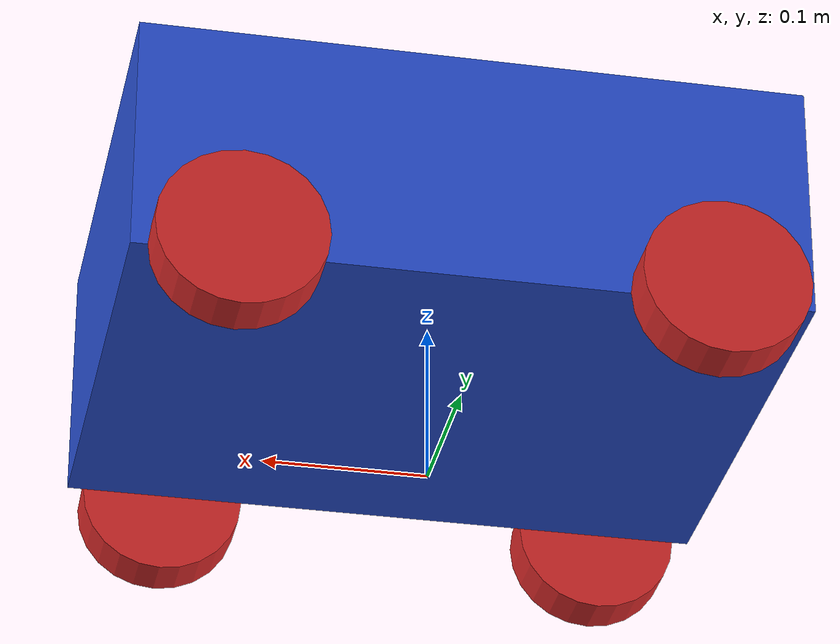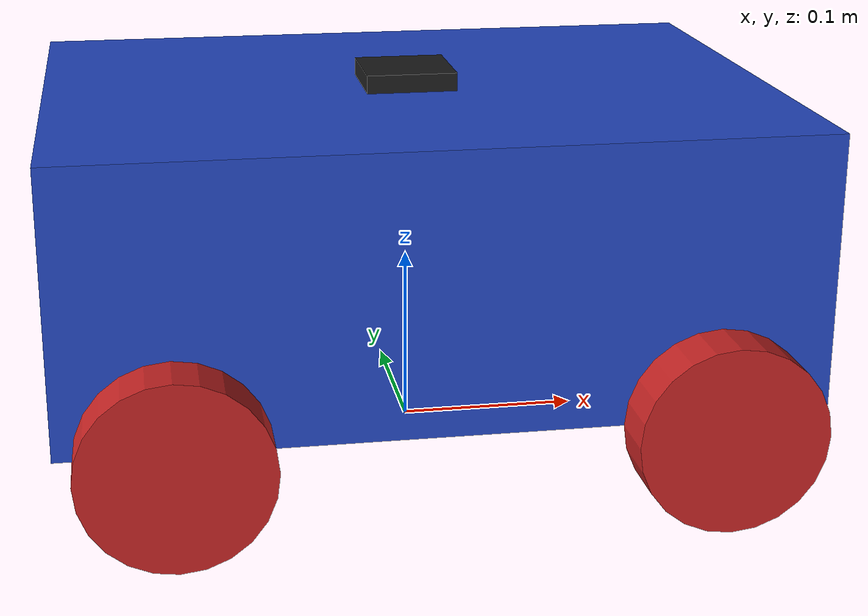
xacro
<?xml version="1.0"?>
<robot name="mecanum_robot" xmlns:xacro="http://www.ros.org/wiki/xacro">

    <!-- Xacro parameters -->
    <xacro:property name="base_length" value="0.4"/>
    <xacro:property name="base_height" value="0.15"/>
    <xacro:property name="base_width" value="0.3"/>
    <xacro:property name="wheel_radius" value="0.05"/>
    <xacro:property name="wheel_length" value="0.03"/>
    <xacro:property name="rotate_90" value="1.57"/>
    <xacro:property name="l_b" value ="0.14"/>
    <xacro:property name="imu_length" value = "0.05"/>
    <xacro:property name="imu_height" value= "0.01"/>
    <xacro:property name="imu_width" value= "0.05"/>

    <!-- Wheel macro -->
    <xacro:macro name="wheel_link" params="prefix">
        <link name="${prefix}_wheel_link">
            <visual>
                <geometry>
                    <cylinder radius="${wheel_radius}" length="${wheel_length}"/>
                </geometry>
                <!-- Rotate cylinder to roll correctly along Y axis -->
                <origin xyz="0.0 0.0 0.0" rpy="${rotate_90} 0.0 0.0"/>
                <material name="red"/>
            </visual>
            <collision>
                <geometry>
                    <sphere radius="${wheel_radius}"/>
                </geometry>
                <origin xyz="0.0 0.0 0.0" rpy="0.0 0.0 0.0"/>
            </collision>
            <xacro:cylinder_inertia
                m="1.0"
                r="${wheel_radius}"
                l="${wheel_length}"
                o_xyz="0.0 0.0 0.0"
                o_rpy="0.0 ${rotate_90} 0.0"/>
        </link>
    </xacro:macro>

    <!-- Instantiate wheels -->
    <xacro:wheel_link prefix="front_right"/>
    <xacro:wheel_link prefix="front_left"/>
    <xacro:wheel_link prefix="back_right"/>
    <xacro:wheel_link prefix="back_left"/>

    <!-- Base links -->
    <link name="base_footprint"/>

    <link name="base_link">
        <visual>
            <geometry>
                <box size="${base_length} ${base_width} ${base_height}"/>
            </geometry>
            <origin xyz="0.0 0.0 ${base_height / 2.0}" rpy="0.0 0.0 0.0"/>
            <material name="blue"/>
        </visual>
        <collision>
            <geometry>
                <box size="${base_length} ${base_width} ${base_height}"/>
            </geometry>
            <origin xyz="0.0 0.0 ${base_height / 2.0}" rpy="0.0 0.0 0.0"/>
        </collision>
        <xacro:box_inertia
            m="5.0"
            x="${base_length}"
            y="${base_width}"
            z="${base_height}"
            o_xyz="0.0 0.0 ${base_height / 2.0}"
            o_rpy="0.0 0.0 0.0"/>
    </link>

    <!-- IMU links -->
    <link name="imu_link">
        <visual>
            <geometry>
                <box size="${imu_length} ${imu_width} ${imu_height}"/>
            </geometry>
            <origin xyz="0.0 0.0 ${imu_height/2}" rpy="0.0 0.0 0.0"/>
            <material name="black"/>
        </visual>
        <collision>
            <geometry>
                <box size="${imu_length} ${imu_width} ${imu_height}"/>
            </geometry>
            <origin xyz="0.0 0.0 ${imu_height/2}" rpy="0.0 0.0 0.0"/>
        </collision>
        <xacro:box_inertia
            m="0.09"
            x="${imu_length}"
            y="${imu_width}"
            z="${imu_height}"
            o_xyz="0.0 0.0 ${imu_height/2}"
            o_rpy="0.0 0.0 0.0"/>
    </link>

    <!-- Joints -->
    <!-- base footprint base link joint-->
    <joint name="base_footprint_base_link_joint" type="fixed">
        <origin xyz="0.0 0.0 ${wheel_radius}" rpy="0.0 0.0 0.0"/>
        <parent link="base_footprint"/>
        <child link="base_link"/>
    </joint>

    <!-- base link and imu joint-->
    <joint name="base_link_imu_link_joint" type="fixed">
        <origin xyz="0.0 0.0 ${base_height}" rpy="0.0 0.0 0.0"/>
        <parent link="base_link"/>
        <child link="imu_link"/>
    </joint>

    <!-- front right wheel joint-->
    <joint name="base_front_right_wheel_joint" type="revolute">
        <origin xyz="${base_length/2 - (base_length/2- l_b)} ${-base_width/2 - wheel_length/2} 0.0" rpy="0.0 0.0 0.0"/>
        <parent link="base_link"/>
        <child link="front_right_wheel_link"/>
        <axis xyz="0.0 1.0 0.0"/>
        <limit lower="0.0" upper="6.28" effort="100.0" velocity="5.0"/>
    </joint>

    <!-- front left wheel joint-->
    <joint name="base_front_left_wheel_joint" type="revolute">
        <origin xyz="${base_length/2 - (base_length/2- l_b)} ${base_width/2 + wheel_length/2} 0.0" rpy="0.0 0.0 0.0"/>
        <parent link="base_link"/>
        <child link="front_left_wheel_link"/>
        <axis xyz="0.0 1.0 0.0"/>
        <limit lower="0.0" upper="6.28" effort="100.0" velocity="5.0"/>
    </joint>

    <!-- back right wheel joint-->
    <joint name="base_back_right_wheel_joint" type="revolute">
        <origin xyz="${-base_length/2 - (-base_length/2 + l_b)} ${-base_width/2 - wheel_length/2} 0.0" rpy="0.0 0.0 0.0"/>
        <parent link="base_link"/>
        <child link="back_right_wheel_link"/>
        <axis xyz="0.0 1.0 0.0"/>
        <limit lower="0.0" upper="6.28" effort="100.0" velocity="5.0"/>
    </joint>

    <!-- back left wheel joint-->
    <joint name="base_back_left_wheel_joint" type="revolute">
        <origin xyz="${-base_length/2 - (-base_length/2 + l_b)} ${base_width/2 + wheel_length/2} 0.0" rpy="0.0 0.0 0.0"/>
        <parent link="base_link"/>
        <child link="back_left_wheel_link"/>
        <axis xyz="0.0 1.0 0.0"/>
        <limit lower="0.0" upper="6.28" effort="100.0" velocity="5.0"/>
    </joint>

</robot>
